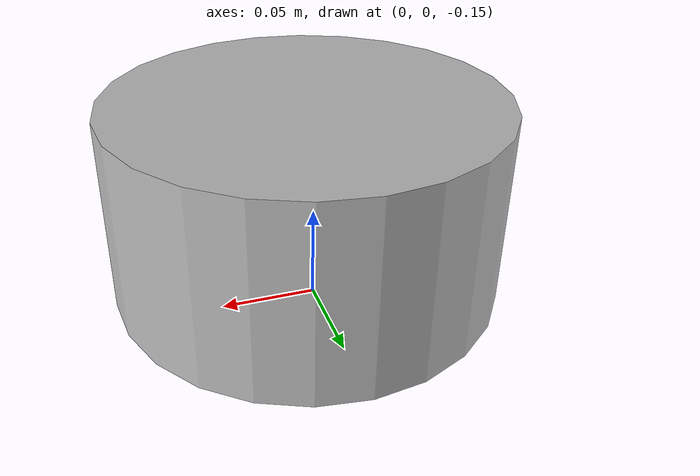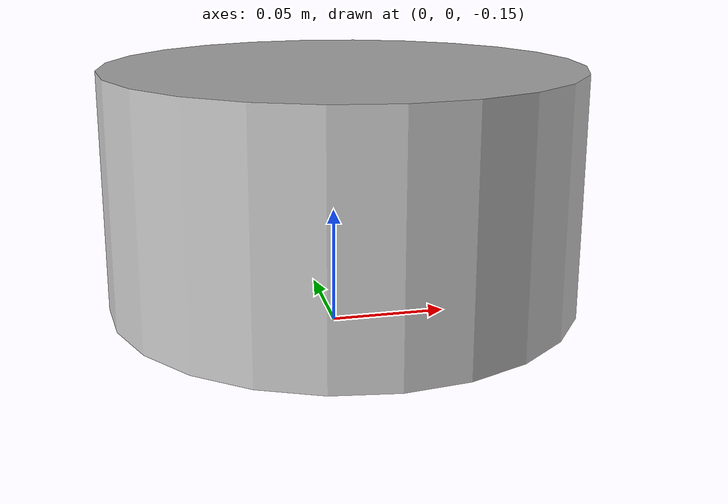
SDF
<?xml version='1.0'?>
<sdf version='1.6'>
  <model name='base'>
    <link name='link_0'>
      <inertial>
        <mass>0.03</mass>
        <inertia>
          <ixx>0.004375</ixx>
          <ixy>0</ixy>
          <ixz>0</ixz>
          <iyy>0.004375</iyy>
          <iyz>0</iyz>
          <izz>0.00375</izz>
        </inertia>
        <pose frame=''>0 0 0 0 -0 0</pose>
      </inertial>
      <pose frame=''>0.003805 -0.001087 -0.087331 0 -0 0</pose>
      <gravity>1</gravity>
      <self_collide>0</self_collide>
      <kinematic>0</kinematic>
      <enable_wind>0</enable_wind>
      <visual name='visual'>
        <pose frame=''>0 0 0 0 -0 0</pose>
        <geometry>
          <cylinder>
            <radius>0.1</radius>
            <length>0.1</length>
          </cylinder>
        </geometry>
      </visual>
      <collision name='collision'>
        <laser_retro>0</laser_retro>
        <max_contacts>10</max_contacts>
        <pose frame=''>0 0 0 0 -0 0</pose>
        <geometry>
          <cylinder>
            <radius>0.1</radius>
            <length>0.1</length>
          </cylinder>
        </geometry>
        <surface>
          <friction>
            <ode>
              <mu>1</mu>
              <mu2>1</mu2>
              <fdir1>0 0 0</fdir1>
              <slip1>0</slip1>
              <slip2>0</slip2>
            </ode>
            <torsional>
              <coefficient>1</coefficient>
              <patch_radius>0</patch_radius>
              <surface_radius>0</surface_radius>
              <use_patch_radius>1</use_patch_radius>
              <ode>
                <slip>0</slip>
              </ode>
            </torsional>
          </friction>
          <bounce>
            <restitution_coefficient>0</restitution_coefficient>
            <threshold>1e+06</threshold>
          </bounce>
          <contact>
            <collide_without_contact>0</collide_without_contact>
            <collide_without_contact_bitmask>1</collide_without_contact_bitmask>
            <collide_bitmask>1</collide_bitmask>
            <ode>
              <soft_cfm>0</soft_cfm>
              <soft_erp>0.2</soft_erp>
              <kp>1e+13</kp>
              <kd>1</kd>
              <max_vel>0.01</max_vel>
              <min_depth>0</min_depth>
            </ode>
            <bullet>
              <split_impulse>1</split_impulse>
              <split_impulse_penetration_threshold>-0.01</split_impulse_penetration_threshold>
              <soft_cfm>0</soft_cfm>
              <soft_erp>0.2</soft_erp>
              <kp>1e+13</kp>
              <kd>1</kd>
            </bullet>
          </contact>
        </surface>
      </collision>
    </link>

</model>

</sdf>
